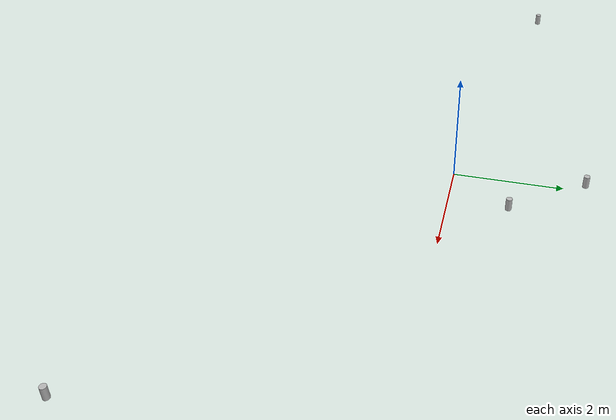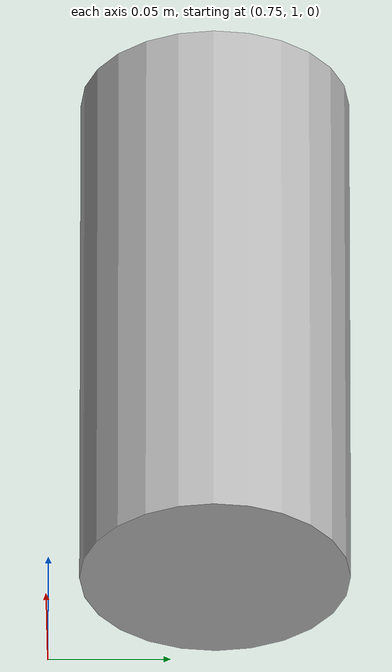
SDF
<?xml version='1.0'?>
<sdf version='1.7'>
  <model name='beer_in_house'>
    <model name='beer'>
      <link name='link'>
        <pose>0 0 0.115 0 -0 0</pose>
        <inertial>
          <mass>0.39</mass>
          <inertia>
            <ixx>0.00058</ixx>
            <ixy>0</ixy>
            <ixz>0</ixz>
            <iyy>0.00058</iyy>
            <iyz>0</iyz>
            <izz>0.00019</izz>
          </inertia>
        </inertial>
        <collision name='collision'>
          <geometry>
            <cylinder>
              <radius>0.055</radius>
              <length>0.23</length>
            </cylinder>
          </geometry>
        </collision>
        <visual name='visual'>
          <geometry>
            <cylinder>
              <radius>0.055</radius>
              <length>0.23</length>
            </cylinder>
          </geometry>
          <material>
            <script>
              <uri>model://beer/materials/scripts</uri>
              <uri>model://beer/materials/textures</uri>
              <name>Beer/Diffuse</name>
            </script>
          </material>
        </visual>
      </link>
      <pose>-0.160082 2.38867 0 0 -0 0</pose>
    </model>
    <model name='beer_0'>
      <link name='link'>
        <pose>0 0 0.115 0 -0 0</pose>
        <inertial>
          <mass>0.39</mass>
          <inertia>
            <ixx>0.00058</ixx>
            <ixy>0</ixy>
            <ixz>0</ixz>
            <iyy>0.00058</iyy>
            <iyz>0</iyz>
            <izz>0.00019</izz>
          </inertia>
        </inertial>
        <collision name='collision'>
          <geometry>
            <cylinder>
              <radius>0.055</radius>
              <length>0.23</length>
            </cylinder>
          </geometry>
        </collision>
        <visual name='visual'>
          <geometry>
            <cylinder>
              <radius>0.055</radius>
              <length>0.23</length>
            </cylinder>
          </geometry>
          <material>
            <script>
              <uri>model://beer/materials/scripts</uri>
              <uri>model://beer/materials/textures</uri>
              <name>Beer/Diffuse</name>
            </script>
          </material>
        </visual>
      </link>
      <pose>0.811222 1.06862 0 0 -0 0</pose>
    </model>
    <model name='beer_1'>
      <link name='link'>
        <pose>0 0 0.115 0 -0 0</pose>
        <inertial>
          <mass>0.39</mass>
          <inertia>
            <ixx>0.00058</ixx>
            <ixy>0</ixy>
            <ixz>0</ixz>
            <iyy>0.00058</iyy>
            <iyz>0</iyz>
            <izz>0.00019</izz>
          </inertia>
        </inertial>
        <collision name='collision'>
          <geometry>
            <cylinder>
              <radius>0.055</radius>
              <length>0.23</length>
            </cylinder>
          </geometry>
        </collision>
        <visual name='visual'>
          <geometry>
            <cylinder>
              <radius>0.055</radius>
              <length>0.23</length>
            </cylinder>
          </geometry>
          <material>
            <script>
              <uri>model://beer/materials/scripts</uri>
              <uri>model://beer/materials/textures</uri>
              <name>Beer/Diffuse</name>
            </script>
          </material>
        </visual>
      </link>
      <pose>-6.90628 1.17855 0 0 -0 0</pose>
    </model>
    <model name='beer_2'>
      <link name='link'>
        <pose>0 0 0.115 0 -0 0</pose>
        <inertial>
          <mass>0.39</mass>
          <inertia>
            <ixx>0.00058</ixx>
            <ixy>0</ixy>
            <ixz>0</ixz>
            <iyy>0.00058</iyy>
            <iyz>0</iyz>
            <izz>0.00019</izz>
          </inertia>
        </inertial>
        <collision name='collision'>
          <geometry>
            <cylinder>
              <radius>0.055</radius>
              <length>0.23</length>
            </cylinder>
          </geometry>
        </collision>
        <visual name='visual'>
          <geometry>
            <cylinder>
              <radius>0.055</radius>
              <length>0.23</length>
            </cylinder>
          </geometry>
          <material>
            <script>
              <uri>model://beer/materials/scripts</uri>
              <uri>model://beer/materials/textures</uri>
              <name>Beer/Diffuse</name>
            </script>
          </material>
        </visual>
      </link>
      <pose>6.25514 -4.63584 0 0 -0 0</pose>
    </model>
    <static>0</static>
    <allow_auto_disable>1</allow_auto_disable>
  </model>
</sdf>
